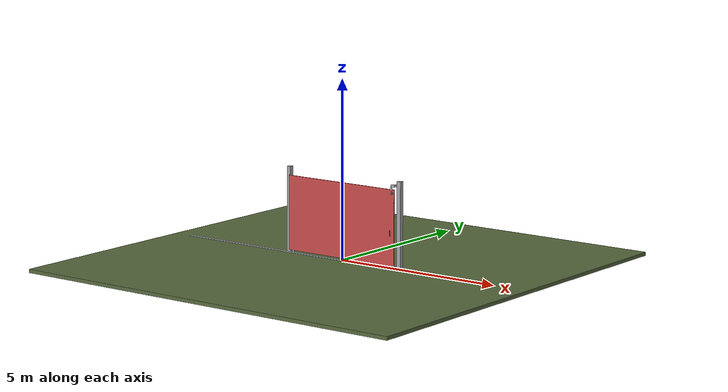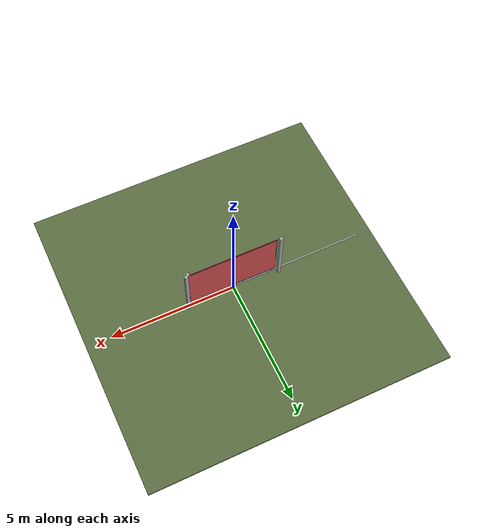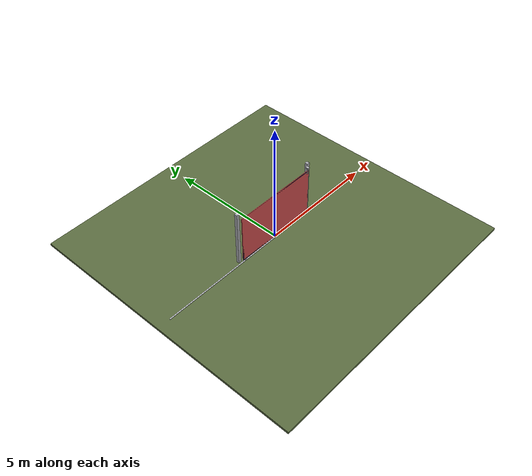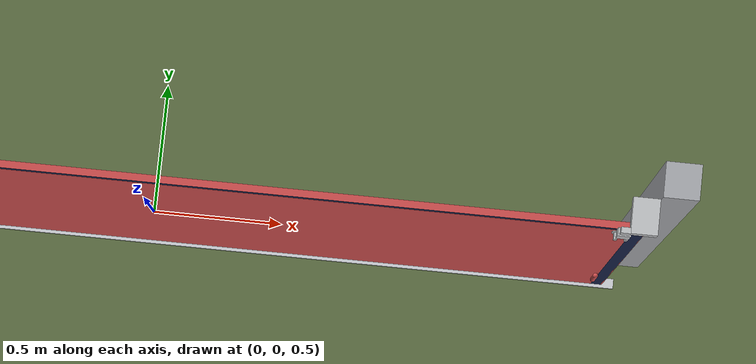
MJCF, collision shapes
<?xml version="1.0" ?>
<mujoco model="db0935_gate_sliding_simple">
  <compiler angle="radian" meshdir="../../hardware" texturedir="../../textures" autolimits="true" inertiafromgeom="false"/>
  <option timestep="0.002" integrator="implicitfast" cone="elliptic" impratio="10" noslip_iterations="3">
    <flag multiccd="enable"/>
  </option>
  <size memory="16M"/>
  <default>
    <geom condim="4" solref="0.005 1" solimp="0.95 0.99 0.001"/>
    <joint solreflimit="0.005 1" solimplimit="0.95 0.99 0.001"/>
    <tendon solreflimit="0.005 1"/>
    <equality solref="0.002 1"/>
  </default>
  <visual>
    <headlight ambient="0.4 0.4 0.4" diffuse="0.7 0.7 0.7" specular="0.2 0.2 0.2"/>
    <quality shadowsize="4096"/>
    <map znear="0.01" zfar="60"/>
  </visual>
  <asset>
    <mesh name="pull_1e5d69a91a" file="pull_1e5d69a91a.obj"/>
    <material name="mat_floor" rgba="0.35 0.42 0.25 1" specular="0.2" shininess="0.15" reflectance="0"/>
    <material name="mat_wall" rgba="0.78 0.76 0.7 1" specular="0.2" shininess="0.1" reflectance="0"/>
    <material name="mat_frame" rgba="0.65 0.66 0.68 1" specular="0.74" shininess="0.5" reflectance="0.36"/>
    <material name="mat_track" rgba="0.8 0.81 0.83 1" specular="0.8" shininess="0.6" reflectance="0.4"/>
    <material name="mat_leaf" rgba="0.09 0.13 0.28 1" specular="0.23" shininess="0.58" reflectance="0.02"/>
    <material name="mat_mesh_infill" rgba="0.6 0.62 0.64 0.55" specular="0.68" shininess="0.3" reflectance="0.1"/>
    <material name="mat_roller" rgba="0.65 0.66 0.68 1" specular="0.74" shininess="0.5" reflectance="0.36"/>
    <material name="mat_op_stainless" rgba="0.75 0.76 0.77 1" specular="0.8" shininess="0.65" reflectance="0.4"/>
    <material name="mat_ebolt" rgba="0.75 0.76 0.77 1" specular="0.8" shininess="0.65" reflectance="0.4"/>
    <material name="mat_hook" rgba="0.75 0.76 0.77 1" specular="0.8" shininess="0.65" reflectance="0.4"/>
    <texture name="skybox" type="skybox" builtin="gradient" rgb1="0.6 0.7 0.85" rgb2="0.9 0.92 0.95" width="256" height="256"/>
  </asset>
  <worldbody>
    <light name="sun" pos="1.5 -2.5 4" dir="-0.3 0.5 -0.8" directional="true" diffuse="0.8 0.8 0.8" specular="0.3 0.3 0.3" castshadow="true"/>
    <light name="fill" pos="-1.5 2.5 3" dir="0.3 -0.5 -0.7" directional="true" diffuse="0.35 0.35 0.4" castshadow="false"/>
    <camera name="robot_view" pos="0 -4.046875 2.208125" xyaxes="1 0 0 0 0.26963 0.962964" fovy="52"/>
    <camera name="far_view" pos="0 4.046875 2.208125" xyaxes="-1 0 0 0 -0.26963 0.962964" fovy="52"/>
    <camera name="iso" pos="3.075625 -3.399375 2.855625" xyaxes="0.741536 0.670913 0 -0.242917 0.268487 0.932151" fovy="46"/>
    <camera name="detail_handle" pos="1.96 -1.2325 1.35" xyaxes="0.975133 0.221621 0 -0.065674 0.288965 0.955084" fovy="38"/>
    <geom name="floor" type="box" size="6 6 0.05" pos="0 0 -0.05" material="mat_floor" group="0" contype="1" conaffinity="1" friction="0.8 0.005 0.0001" density="2400"/>
    <geom name="post_l" type="box" size="0.06 0.06 1.2" pos="-1.885 0.08 1.2" material="mat_frame" group="0" contype="1" conaffinity="1" friction="0.6 0.005 0.0001" density="7850"/>
    <geom name="post_r" type="box" size="0.06 0.06 1.2" pos="1.885 0.08 1.2" material="mat_frame" group="0" contype="1" conaffinity="1" friction="0.6 0.005 0.0001" density="7850"/>
    <geom name="gate_rail" type="box" size="3.65 0.02 0.012" pos="-1.8 -0.06 0.012" material="mat_track" group="0" contype="1" conaffinity="1" friction="0.6 0.005 0.0001" density="2700"/>
    <geom name="leaf_electric_bolt_housing" type="box" size="0.022 0.014 0.045" pos="1.72 -0.0905 2.21" material="mat_ebolt" group="1" contype="0" conaffinity="0" density="7900"/>
    <geom name="leaf_electric_bolt_riser" type="box" size="0.016 0.01 0.034" pos="1.72 -0.0905 2.285" material="mat_ebolt" group="1" contype="0" conaffinity="0" density="7900"/>
    <geom name="leaf_electric_bolt_riser_strap_0" type="box" size="0.045 0.06125 0.0272" pos="1.7805 -0.03725 2.285" material="mat_ebolt" group="1" contype="0" conaffinity="0" density="7850"/>
    <site name="approach_point" pos="0 -1.5 0" quat="1 0 0 0" size="0.05" rgba="0.2 0.9 0.2 0.5" group="4"/>
    <site name="goal_point" pos="0 1.5 0" quat="1 0 0 0" size="0.05" rgba="0.2 0.9 0.2 0.5" group="4"/>
    <site name="door_plane_center" pos="0 0 1.075" quat="1 0 0 0" size="0.02" rgba="0.2 0.9 0.2 0.5" group="4"/>
    <body name="leaf" pos="0 -0.06 0">
      <inertial pos="0.003881 -0.000108 1.126679" mass="329.086632" quat="0.707116 -0.707097 -0.000672 -0.000791" diaginertia="121.946801682 358.826575595 480.735010768"/>
      <joint name="leaf_slide" type="slide" axis="-1 0 0" limited="true" range="0 3.6" damping="18.46185" frictionloss="104.933141" armature="0.5"/>
      <geom name="leaf_slab_col" type="box" size="1.8 0.0125 1.05" pos="0 0 1.13" material="mat_leaf" group="3" contype="1" conaffinity="1" rgba="0.8 0.3 0.3 0.25" friction="0.45 0.005 0.0001" density="1"/>
      <geom name="leaf_rail_b" type="box" size="1.8 0.0125 0.0225" pos="0 0 0.1025" material="mat_leaf" group="1" contype="0" conaffinity="0" density="1"/>
      <geom name="leaf_rail_t" type="box" size="1.8 0.0125 0.0225" pos="0 0 2.1575" material="mat_leaf" group="1" contype="0" conaffinity="0" density="1"/>
      <geom name="leaf_stile_h" type="box" size="0.0225 0.0125 1.05" pos="-1.7775 0 1.13" material="mat_leaf" group="1" contype="0" conaffinity="0" density="1"/>
      <geom name="leaf_stile_l" type="box" size="0.0225 0.0125 1.05" pos="1.7775 0 1.13" material="mat_leaf" group="1" contype="0" conaffinity="0" density="1"/>
      <geom name="leaf_mesh" type="box" size="1.755 0.0015 1.005" pos="0 0 1.13" material="mat_mesh_infill" group="1" contype="0" conaffinity="0" density="1"/>
      <geom name="leaf_roller_0" type="cylinder" size="0.04 0.008" pos="-1.66 0 0.064" quat="0.707107 -0.707107 0 0" material="mat_roller" group="1" contype="0" conaffinity="0" density="7850"/>
      <geom name="leaf_roller_1" type="cylinder" size="0.04 0.008" pos="1.58 0 0.064" quat="0.707107 -0.707107 0 0" material="mat_roller" group="1" contype="0" conaffinity="0" density="7850"/>
      <geom name="leaf_pull_n" type="mesh" mesh="pull_1e5d69a91a" pos="1.71 -0.0125 1" quat="0.707107 0.707107 0 0" material="mat_op_stainless" group="1" contype="0" conaffinity="0" density="3000"/>
      <geom name="leaf_pull_col_n" type="capsule" size="0.0095 0.08" pos="1.71 -0.0725 1" material="mat_op_stainless" group="3" contype="1" conaffinity="1" rgba="0.8 0.3 0.3 0.25" friction="0.7 0.01 0.0001" density="3000"/>
      <geom name="leaf_ebolt_keeper_n" type="box" size="0.006 0.014 0.02" pos="1.702 -0.0265 2.08" material="mat_ebolt" group="0" contype="1" conaffinity="1" friction="0.6 0.005 0.0001" density="7900"/>
      <geom name="leaf_ebolt_keeper_p" type="box" size="0.006 0.014 0.02" pos="1.738 -0.0265 2.08" material="mat_ebolt" group="0" contype="1" conaffinity="1" friction="0.6 0.005 0.0001" density="7900"/>
      <geom name="leaf_ebolt_keeper_base" type="box" size="0.03 0.002 0.03" pos="1.72 -0.0145 2.08" material="mat_ebolt" group="1" contype="0" conaffinity="0" density="7900"/>
      <site name="leaf_pull_grip_n" pos="1.71 -0.0725 1" quat="1 0 0 0" size="0.012" rgba="0.2 0.9 0.2 0.5" group="4"/>
      <site name="leaf_edge_mid" pos="1.8 0 1.13" quat="1 0 0 0" size="0.02" rgba="0.2 0.9 0.2 0.5" group="4"/>
    </body>
    <body name="leaf_electric_bolt" pos="1.72 -0.0865 2.115">
      <inertial pos="0 0 0.04" mass="0.150368" quat="0.707107 0 0.707107 0" diaginertia="0.000004703 0.000115179 0.000115179"/>
      <joint name="leaf_electric_bolt_slide" type="slide" axis="0 0 1" limited="true" range="0 0.04" damping="5" frictionloss="2" armature="0.1" ref="0.04"/>
      <geom name="leaf_electric_bolt_geom" type="capsule" size="0.008 0.042" pos="0 0 0.04" material="mat_ebolt" group="0" contype="1" conaffinity="1" friction="0.4 0.005 0.0001" density="7900"/>
    </body>
  </worldbody>
  <sensor>
    <jointpos name="leaf_slide_pos" joint="leaf_slide"/>
    <jointvel name="leaf_slide_vel" joint="leaf_slide"/>
    <jointpos name="leaf_electric_bolt_slide_pos" joint="leaf_electric_bolt_slide"/>
    <jointvel name="leaf_electric_bolt_slide_vel" joint="leaf_electric_bolt_slide"/>
  </sensor>
</mujoco>
